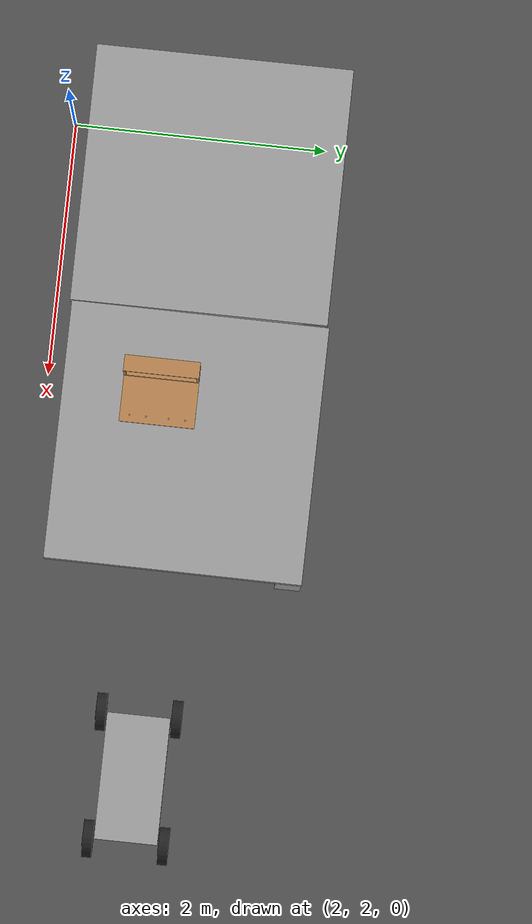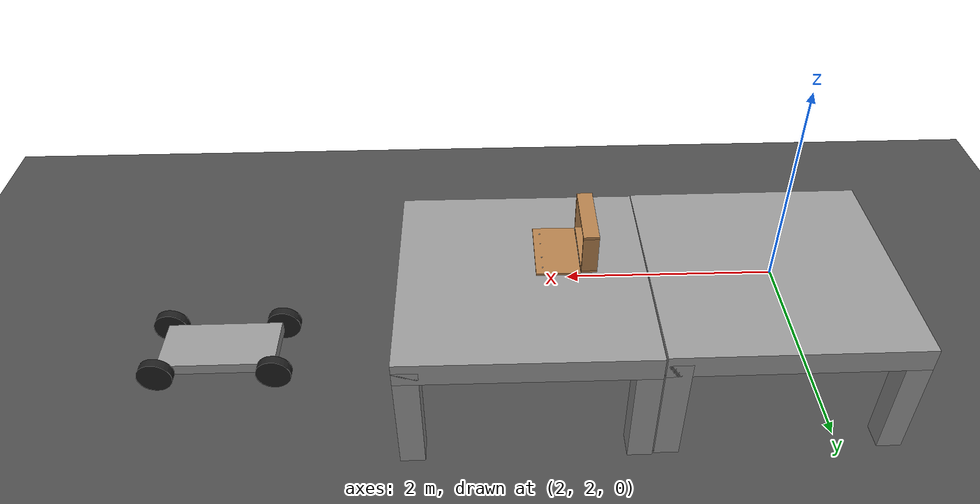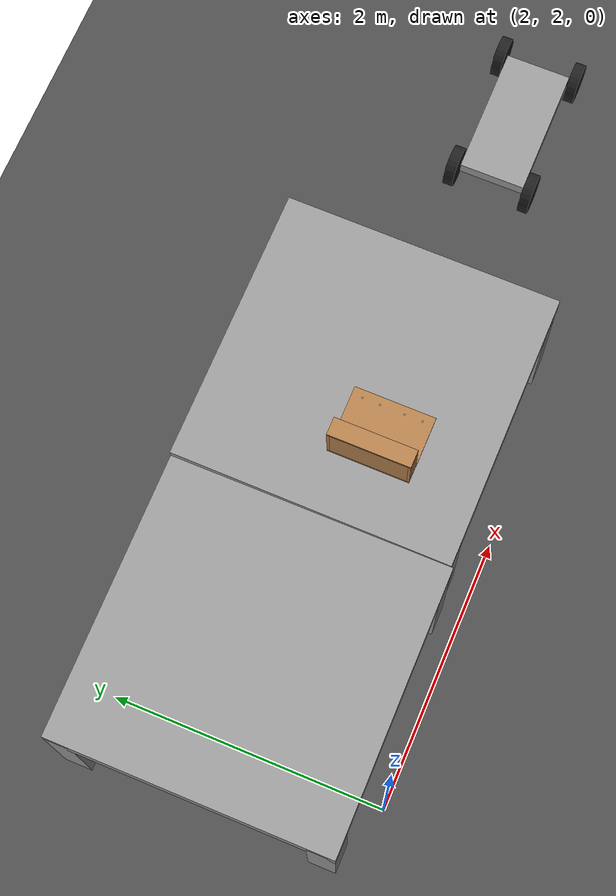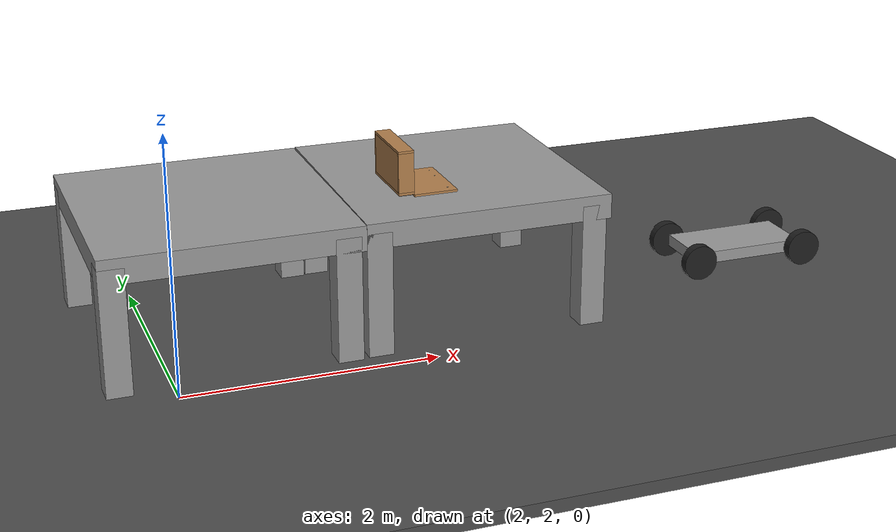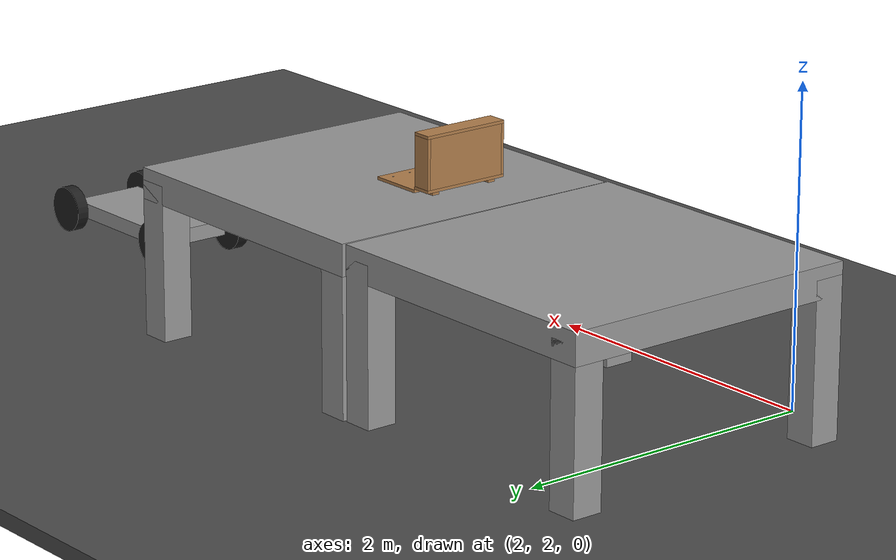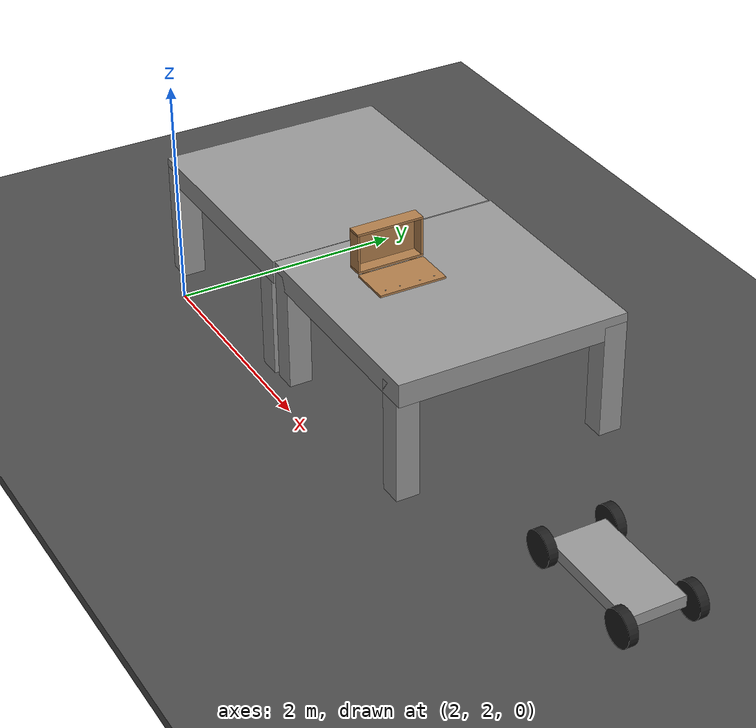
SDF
<sdf version="1.6">
 <world name="default">
  <model name="ground_plane">
   <static>1</static>
   <link name="link">
    <collision name="collision">
     <geometry><plane><normal>0 0 1</normal><size>100 100</size></plane></geometry>
     <surface>
      <contact><collide_bitmask>65535</collide_bitmask></contact>
      <friction><ode><mu>100</mu><mu2>50</mu2></ode></friction>
     </surface>
    </collision>
    <visual name="visual">
     <cast_shadows>0</cast_shadows>
     <geometry><plane><normal>0 0 1</normal><size>100 100</size></plane></geometry>
     <material>
      <script><uri>file://media/materials/scripts/gazebo.material</uri><name>Gazebo/Grey</name></script>
     </material>
    </visual>
   </link>
  </model>
  <model name="TableSmall_clone">
   <link name="link_0">
    <pose>0.868 -0.9 -0.096 0 -0 0</pose>
    <inertial>
     <mass>1</mass>
     <inertia>
      <ixx>0.166667</ixx>
      <ixy>0</ixy>
      <ixz>0</ixz>
      <iyy>0.166667</iyy>
      <iyz>0</iyz>
      <izz>0.166667</izz>
     </inertia>
    </inertial>
    <visual name="visual">
     <geometry><box><size>0.2 0.2 1</size></box></geometry>
     <material>
      <lighting>1</lighting>
      <script><uri>file://media/materials/scripts/gazebo.material</uri><name>Gazebo/Grey</name></script>
      <shader type="pixel"><normal_map>__default__</normal_map></shader>
      <ambient>0.3 0.3 0.3 1</ambient>
      <diffuse>0.7 0.7 0.7 1</diffuse>
      <specular>0.01 0.01 0.01 1</specular>
      <emissive>0 0 0 1</emissive>
     </material>
    </visual>
    <collision name="collision">
     <geometry><box><size>0.2 0.2 1</size></box></geometry>
     <surface>
      <friction>
       <ode><mu>1</mu><mu2>1</mu2><fdir1>0 0 0</fdir1><slip1>0</slip1><slip2>0</slip2></ode>
       <torsional>
        <coefficient>1</coefficient>
        <patch_radius>0</patch_radius>
        <surface_radius>0</surface_radius>
        <use_patch_radius>1</use_patch_radius>
        <ode><slip>0</slip></ode>
       </torsional>
      </friction>
      <bounce><restitution_coefficient>0</restitution_coefficient><threshold>1e+06</threshold></bounce>
      <contact>
       <collide_without_contact>0</collide_without_contact>
       <collide_without_contact_bitmask>1</collide_without_contact_bitmask>
       <collide_bitmask>1</collide_bitmask>
       <ode>
        <soft_cfm>0</soft_cfm>
        <soft_erp>0.2</soft_erp>
        <kp>1e+13</kp>
        <kd>1</kd>
        <max_vel>0.01</max_vel>
        <min_depth>0</min_depth>
       </ode>
       <bullet>
        <split_impulse>1</split_impulse>
        <split_impulse_penetration_threshold>-0.01</split_impulse_penetration_threshold>
        <soft_cfm>0</soft_cfm>
        <soft_erp>0.2</soft_erp>
        <kp>1e+13</kp>
        <kd>1</kd>
       </bullet>
      </contact>
     </surface>
    </collision>
   </link>
   <link name="link_0_clone">
    <pose>-0.892 -0.9 -0.096 0 -0 0</pose>
    <inertial>
     <mass>1</mass>
     <inertia>
      <ixx>0.166667</ixx>
      <ixy>0</ixy>
      <ixz>0</ixz>
      <iyy>0.166667</iyy>
      <iyz>0</iyz>
      <izz>0.166667</izz>
     </inertia>
    </inertial>
    <visual name="visual">
     <geometry><box><size>0.2 0.2 1</size></box></geometry>
     <material>
      <lighting>1</lighting>
      <script><uri>file://media/materials/scripts/gazebo.material</uri><name>Gazebo/Grey</name></script>
      <shader type="pixel"><normal_map>__default__</normal_map></shader>
      <ambient>0.3 0.3 0.3 1</ambient>
      <diffuse>0.7 0.7 0.7 1</diffuse>
      <specular>0.01 0.01 0.01 1</specular>
      <emissive>0 0 0 1</emissive>
     </material>
    </visual>
    <collision name="collision">
     <geometry><box><size>0.2 0.2 1</size></box></geometry>
     <surface>
      <friction>
       <ode><mu>1</mu><mu2>1</mu2><fdir1>0 0 0</fdir1><slip1>0</slip1><slip2>0</slip2></ode>
       <torsional>
        <coefficient>1</coefficient>
        <patch_radius>0</patch_radius>
        <surface_radius>0</surface_radius>
        <use_patch_radius>1</use_patch_radius>
        <ode><slip>0</slip></ode>
       </torsional>
      </friction>
      <bounce><restitution_coefficient>0</restitution_coefficient><threshold>1e+06</threshold></bounce>
      <contact>
       <collide_without_contact>0</collide_without_contact>
       <collide_without_contact_bitmask>1</collide_without_contact_bitmask>
       <collide_bitmask>1</collide_bitmask>
       <ode>
        <soft_cfm>0</soft_cfm>
        <soft_erp>0.2</soft_erp>
        <kp>1e+13</kp>
        <kd>1</kd>
        <max_vel>0.01</max_vel>
        <min_depth>0</min_depth>
       </ode>
       <bullet>
        <split_impulse>1</split_impulse>
        <split_impulse_penetration_threshold>-0.01</split_impulse_penetration_threshold>
        <soft_cfm>0</soft_cfm>
        <soft_erp>0.2</soft_erp>
        <kp>1e+13</kp>
        <kd>1</kd>
       </bullet>
      </contact>
     </surface>
    </collision>
   </link>
   <link name="link_0_clone_0">
    <pose>-0.892 0.9 -0.096 0 -0 0</pose>
    <inertial>
     <mass>1</mass>
     <inertia>
      <ixx>0.166667</ixx>
      <ixy>0</ixy>
      <ixz>0</ixz>
      <iyy>0.166667</iyy>
      <iyz>0</iyz>
      <izz>0.166667</izz>
     </inertia>
    </inertial>
    <visual name="visual">
     <geometry><box><size>0.2 0.2 1</size></box></geometry>
     <material>
      <lighting>1</lighting>
      <script><uri>file://media/materials/scripts/gazebo.material</uri><name>Gazebo/Grey</name></script>
      <shader type="pixel"><normal_map>__default__</normal_map></shader>
      <ambient>0.3 0.3 0.3 1</ambient>
      <diffuse>0.7 0.7 0.7 1</diffuse>
      <specular>0.01 0.01 0.01 1</specular>
      <emissive>0 0 0 1</emissive>
     </material>
    </visual>
    <collision name="collision">
     <geometry><box><size>0.2 0.2 1</size></box></geometry>
     <surface>
      <friction>
       <ode><mu>1</mu><mu2>1</mu2><fdir1>0 0 0</fdir1><slip1>0</slip1><slip2>0</slip2></ode>
       <torsional>
        <coefficient>1</coefficient>
        <patch_radius>0</patch_radius>
        <surface_radius>0</surface_radius>
        <use_patch_radius>1</use_patch_radius>
        <ode><slip>0</slip></ode>
       </torsional>
      </friction>
      <bounce><restitution_coefficient>0</restitution_coefficient><threshold>1e+06</threshold></bounce>
      <contact>
       <collide_without_contact>0</collide_without_contact>
       <collide_without_contact_bitmask>1</collide_without_contact_bitmask>
       <collide_bitmask>1</collide_bitmask>
       <ode>
        <soft_cfm>0</soft_cfm>
        <soft_erp>0.2</soft_erp>
        <kp>1e+13</kp>
        <kd>1</kd>
        <max_vel>0.01</max_vel>
        <min_depth>0</min_depth>
       </ode>
       <bullet>
        <split_impulse>1</split_impulse>
        <split_impulse_penetration_threshold>-0.01</split_impulse_penetration_threshold>
        <soft_cfm>0</soft_cfm>
        <soft_erp>0.2</soft_erp>
        <kp>1e+13</kp>
        <kd>1</kd>
       </bullet>
      </contact>
     </surface>
    </collision>
   </link>
   <link name="link_0_clone_1">
    <pose>0.908 0.9 -0.096 0 -0 0</pose>
    <inertial>
     <mass>1</mass>
     <inertia>
      <ixx>0.166667</ixx>
      <ixy>0</ixy>
      <ixz>0</ixz>
      <iyy>0.166667</iyy>
      <iyz>0</iyz>
      <izz>0.166667</izz>
     </inertia>
    </inertial>
    <visual name="visual">
     <geometry><box><size>0.2 0.2 1</size></box></geometry>
     <material>
      <lighting>1</lighting>
      <script><uri>file://media/materials/scripts/gazebo.material</uri><name>Gazebo/Grey</name></script>
      <shader type="pixel"><normal_map>__default__</normal_map></shader>
      <ambient>0.3 0.3 0.3 1</ambient>
      <diffuse>0.7 0.7 0.7 1</diffuse>
      <specular>0.01 0.01 0.01 1</specular>
      <emissive>0 0 0 1</emissive>
     </material>
    </visual>
    <collision name="collision">
     <geometry><box><size>0.2 0.2 1</size></box></geometry>
     <surface>
      <friction>
       <ode><mu>1</mu><mu2>1</mu2><fdir1>0 0 0</fdir1><slip1>0</slip1><slip2>0</slip2></ode>
       <torsional>
        <coefficient>1</coefficient>
        <patch_radius>0</patch_radius>
        <surface_radius>0</surface_radius>
        <use_patch_radius>1</use_patch_radius>
        <ode><slip>0</slip></ode>
       </torsional>
      </friction>
      <bounce><restitution_coefficient>0</restitution_coefficient><threshold>1e+06</threshold></bounce>
      <contact>
       <collide_without_contact>0</collide_without_contact>
       <collide_without_contact_bitmask>1</collide_without_contact_bitmask>
       <collide_bitmask>1</collide_bitmask>
       <ode>
        <soft_cfm>0</soft_cfm>
        <soft_erp>0.2</soft_erp>
        <kp>1e+13</kp>
        <kd>1</kd>
        <max_vel>0.01</max_vel>
        <min_depth>0</min_depth>
       </ode>
       <bullet>
        <split_impulse>1</split_impulse>
        <split_impulse_penetration_threshold>-0.01</split_impulse_penetration_threshold>
        <soft_cfm>0</soft_cfm>
        <soft_erp>0.2</soft_erp>
        <kp>1e+13</kp>
        <kd>1</kd>
       </bullet>
      </contact>
     </surface>
    </collision>
   </link>
   <link name="link_1">
    <pose>0.008 0 0.384 0 -0 0</pose>
    <inertial>
     <mass>1</mass>
     <inertia>
      <ixx>0.166667</ixx>
      <ixy>0</ixy>
      <ixz>0</ixz>
      <iyy>0.166667</iyy>
      <iyz>0</iyz>
      <izz>0.166667</izz>
     </inertia>
    </inertial>
    <visual name="visual">
     <geometry><box><size>2 2 0.2</size></box></geometry>
     <material>
      <lighting>1</lighting>
      <script><uri>file://media/materials/scripts/gazebo.material</uri><name>Gazebo/Grey</name></script>
      <shader type="pixel"><normal_map>__default__</normal_map></shader>
      <ambient>0.3 0.3 0.3 1</ambient>
      <diffuse>0.7 0.7 0.7 1</diffuse>
      <specular>0.01 0.01 0.01 1</specular>
      <emissive>0 0 0 1</emissive>
     </material>
    </visual>
    <collision name="collision">
     <geometry><box><size>2 2 0.2</size></box></geometry>
     <surface>
      <friction>
       <ode><mu>1</mu><mu2>1</mu2><fdir1>0 0 0</fdir1><slip1>0</slip1><slip2>0</slip2></ode>
       <torsional>
        <coefficient>1</coefficient>
        <patch_radius>0</patch_radius>
        <surface_radius>0</surface_radius>
        <use_patch_radius>1</use_patch_radius>
        <ode><slip>0</slip></ode>
       </torsional>
      </friction>
      <bounce><restitution_coefficient>0</restitution_coefficient><threshold>1e+06</threshold></bounce>
      <contact>
       <collide_without_contact>0</collide_without_contact>
       <collide_without_contact_bitmask>1</collide_without_contact_bitmask>
       <collide_bitmask>1</collide_bitmask>
       <ode>
        <soft_cfm>0</soft_cfm>
        <soft_erp>0.2</soft_erp>
        <kp>1e+13</kp>
        <kd>1</kd>
        <max_vel>0.01</max_vel>
        <min_depth>0</min_depth>
       </ode>
       <bullet>
        <split_impulse>1</split_impulse>
        <split_impulse_penetration_threshold>-0.01</split_impulse_penetration_threshold>
        <soft_cfm>0</soft_cfm>
        <soft_erp>0.2</soft_erp>
        <kp>1e+13</kp>
        <kd>1</kd>
       </bullet>
      </contact>
     </surface>
    </collision>
   </link>
   <joint name="link_1_JOINT_0" type="fixed">
    <parent>link_1</parent>
    <child>link_0_clone_1</child>
    <physics>
     <ode><limit><cfm>0</cfm><erp>0.2</erp></limit><suspension><cfm>0</cfm><erp>0.2</erp></suspension></ode>
    </physics>
   </joint>
   <joint name="link_1_JOINT_1" type="fixed">
    <parent>link_1</parent>
    <child>link_0_clone_0</child>
    <physics>
     <ode><limit><cfm>0</cfm><erp>0.2</erp></limit><suspension><cfm>0</cfm><erp>0.2</erp></suspension></ode>
    </physics>
   </joint>
   <joint name="link_1_JOINT_2" type="revolute">
    <parent>link_1</parent>
    <child>link_0</child>
    <axis>
     <xyz>1 0 0</xyz>
     <use_parent_model_frame>0</use_parent_model_frame>
     <limit>
      <lower>-1.79769e+308</lower>
      <upper>1.79769e+308</upper>
      <effort>-1</effort>
      <velocity>-1</velocity>
     </limit>
     <dynamics>
      <spring_reference>0</spring_reference>
      <spring_stiffness>0</spring_stiffness>
      <damping>0</damping>
     </dynamics>
    </axis>
    <physics>
     <ode><limit><cfm>0</cfm><erp>0.2</erp></limit><suspension><cfm>0</cfm><erp>0.2</erp></suspension></ode>
    </physics>
   </joint>
   <joint name="link_1_JOINT_3" type="revolute">
    <parent>link_1</parent>
    <child>link_0_clone</child>
    <axis>
     <xyz>1 0 0</xyz>
     <use_parent_model_frame>0</use_parent_model_frame>
     <limit>
      <lower>-1.79769e+308</lower>
      <upper>1.79769e+308</upper>
      <effort>-1</effort>
      <velocity>-1</velocity>
     </limit>
     <dynamics>
      <spring_reference>0</spring_reference>
      <spring_stiffness>0</spring_stiffness>
      <damping>0</damping>
     </dynamics>
    </axis>
    <physics>
     <ode><limit><cfm>0</cfm><erp>0.2</erp></limit><suspension><cfm>0</cfm><erp>0.2</erp></suspension></ode>
    </physics>
   </joint>
   <static>0</static>
   <pose>4.49155 3.16061 0.598001 4e-06 4e-06 -0.001695</pose>
  </model>
  <model name="TableSmall_clone_clone">
   <link name="link_0">
    <pose>0.868 -0.9 -0.096 0 -0 0</pose>
    <inertial>
     <mass>1</mass>
     <inertia>
      <ixx>0.166667</ixx>
      <ixy>0</ixy>
      <ixz>0</ixz>
      <iyy>0.166667</iyy>
      <iyz>0</iyz>
      <izz>0.166667</izz>
     </inertia>
    </inertial>
    <visual name="visual">
     <geometry><box><size>0.2 0.2 1</size></box></geometry>
     <material>
      <lighting>1</lighting>
      <script><uri>file://media/materials/scripts/gazebo.material</uri><name>Gazebo/Grey</name></script>
      <shader type="pixel"><normal_map>__default__</normal_map></shader>
      <ambient>0.3 0.3 0.3 1</ambient>
      <diffuse>0.7 0.7 0.7 1</diffuse>
      <specular>0.01 0.01 0.01 1</specular>
      <emissive>0 0 0 1</emissive>
     </material>
    </visual>
    <collision name="collision">
     <geometry><box><size>0.2 0.2 1</size></box></geometry>
     <surface>
      <friction>
       <ode><mu>1</mu><mu2>1</mu2><fdir1>0 0 0</fdir1><slip1>0</slip1><slip2>0</slip2></ode>
       <torsional>
        <coefficient>1</coefficient>
        <patch_radius>0</patch_radius>
        <surface_radius>0</surface_radius>
        <use_patch_radius>1</use_patch_radius>
        <ode><slip>0</slip></ode>
       </torsional>
      </friction>
      <bounce><restitution_coefficient>0</restitution_coefficient><threshold>1e+06</threshold></bounce>
      <contact>
       <collide_without_contact>0</collide_without_contact>
       <collide_without_contact_bitmask>1</collide_without_contact_bitmask>
       <collide_bitmask>1</collide_bitmask>
       <ode>
        <soft_cfm>0</soft_cfm>
        <soft_erp>0.2</soft_erp>
        <kp>1e+13</kp>
        <kd>1</kd>
        <max_vel>0.01</max_vel>
        <min_depth>0</min_depth>
       </ode>
       <bullet>
        <split_impulse>1</split_impulse>
        <split_impulse_penetration_threshold>-0.01</split_impulse_penetration_threshold>
        <soft_cfm>0</soft_cfm>
        <soft_erp>0.2</soft_erp>
        <kp>1e+13</kp>
        <kd>1</kd>
       </bullet>
      </contact>
     </surface>
    </collision>
   </link>
   <link name="link_0_clone">
    <pose>-0.892 -0.9 -0.096 0 -0 0</pose>
    <inertial>
     <mass>1</mass>
     <inertia>
      <ixx>0.166667</ixx>
      <ixy>0</ixy>
      <ixz>0</ixz>
      <iyy>0.166667</iyy>
      <iyz>0</iyz>
      <izz>0.166667</izz>
     </inertia>
    </inertial>
    <visual name="visual">
     <geometry><box><size>0.2 0.2 1</size></box></geometry>
     <material>
      <lighting>1</lighting>
      <script><uri>file://media/materials/scripts/gazebo.material</uri><name>Gazebo/Grey</name></script>
      <shader type="pixel"><normal_map>__default__</normal_map></shader>
      <ambient>0.3 0.3 0.3 1</ambient>
      <diffuse>0.7 0.7 0.7 1</diffuse>
      <specular>0.01 0.01 0.01 1</specular>
      <emissive>0 0 0 1</emissive>
     </material>
    </visual>
    <collision name="collision">
     <geometry><box><size>0.2 0.2 1</size></box></geometry>
     <surface>
      <friction>
       <ode><mu>1</mu><mu2>1</mu2><fdir1>0 0 0</fdir1><slip1>0</slip1><slip2>0</slip2></ode>
       <torsional>
        <coefficient>1</coefficient>
        <patch_radius>0</patch_radius>
        <surface_radius>0</surface_radius>
        <use_patch_radius>1</use_patch_radius>
        <ode><slip>0</slip></ode>
       </torsional>
      </friction>
      <bounce><restitution_coefficient>0</restitution_coefficient><threshold>1e+06</threshold></bounce>
      <contact>
       <collide_without_contact>0</collide_without_contact>
       <collide_without_contact_bitmask>1</collide_without_contact_bitmask>
       <collide_bitmask>1</collide_bitmask>
       <ode>
        <soft_cfm>0</soft_cfm>
        <soft_erp>0.2</soft_erp>
        <kp>1e+13</kp>
        <kd>1</kd>
        <max_vel>0.01</max_vel>
        <min_depth>0</min_depth>
       </ode>
       <bullet>
        <split_impulse>1</split_impulse>
        <split_impulse_penetration_threshold>-0.01</split_impulse_penetration_threshold>
        <soft_cfm>0</soft_cfm>
        <soft_erp>0.2</soft_erp>
        <kp>1e+13</kp>
        <kd>1</kd>
       </bullet>
      </contact>
     </surface>
    </collision>
   </link>
   <link name="link_0_clone_0">
    <pose>-0.892 0.9 -0.096 0 -0 0</pose>
    <inertial>
     <mass>1</mass>
     <inertia>
      <ixx>0.166667</ixx>
      <ixy>0</ixy>
      <ixz>0</ixz>
      <iyy>0.166667</iyy>
      <iyz>0</iyz>
      <izz>0.166667</izz>
     </inertia>
    </inertial>
    <visual name="visual">
     <geometry><box><size>0.2 0.2 1</size></box></geometry>
     <material>
      <lighting>1</lighting>
      <script><uri>file://media/materials/scripts/gazebo.material</uri><name>Gazebo/Grey</name></script>
      <shader type="pixel"><normal_map>__default__</normal_map></shader>
      <ambient>0.3 0.3 0.3 1</ambient>
      <diffuse>0.7 0.7 0.7 1</diffuse>
      <specular>0.01 0.01 0.01 1</specular>
      <emissive>0 0 0 1</emissive>
     </material>
    </visual>
    <collision name="collision">
     <geometry><box><size>0.2 0.2 1</size></box></geometry>
     <surface>
      <friction>
       <ode><mu>1</mu><mu2>1</mu2><fdir1>0 0 0</fdir1><slip1>0</slip1><slip2>0</slip2></ode>
       <torsional>
        <coefficient>1</coefficient>
        <patch_radius>0</patch_radius>
        <surface_radius>0</surface_radius>
        <use_patch_radius>1</use_patch_radius>
        <ode><slip>0</slip></ode>
       </torsional>
      </friction>
      <bounce><restitution_coefficient>0</restitution_coefficient><threshold>1e+06</threshold></bounce>
      <contact>
       <collide_without_contact>0</collide_without_contact>
       <collide_without_contact_bitmask>1</collide_without_contact_bitmask>
       <collide_bitmask>1</collide_bitmask>
       <ode>
        <soft_cfm>0</soft_cfm>
        <soft_erp>0.2</soft_erp>
        <kp>1e+13</kp>
        <kd>1</kd>
        <max_vel>0.01</max_vel>
        <min_depth>0</min_depth>
       </ode>
       <bullet>
        <split_impulse>1</split_impulse>
        <split_impulse_penetration_threshold>-0.01</split_impulse_penetration_threshold>
        <soft_cfm>0</soft_cfm>
        <soft_erp>0.2</soft_erp>
        <kp>1e+13</kp>
        <kd>1</kd>
       </bullet>
      </contact>
     </surface>
    </collision>
   </link>
   <link name="link_0_clone_1">
    <pose>0.908 0.9 -0.096 0 -0 0</pose>
    <inertial>
     <mass>1</mass>
     <inertia>
      <ixx>0.166667</ixx>
      <ixy>0</ixy>
      <ixz>0</ixz>
      <iyy>0.166667</iyy>
      <iyz>0</iyz>
      <izz>0.166667</izz>
     </inertia>
    </inertial>
    <visual name="visual">
     <geometry><box><size>0.2 0.2 1</size></box></geometry>
     <material>
      <lighting>1</lighting>
      <script><uri>file://media/materials/scripts/gazebo.material</uri><name>Gazebo/Grey</name></script>
      <shader type="pixel"><normal_map>__default__</normal_map></shader>
      <ambient>0.3 0.3 0.3 1</ambient>
      <diffuse>0.7 0.7 0.7 1</diffuse>
      <specular>0.01 0.01 0.01 1</specular>
      <emissive>0 0 0 1</emissive>
     </material>
    </visual>
    <collision name="collision">
     <geometry><box><size>0.2 0.2 1</size></box></geometry>
     <surface>
      <friction>
       <ode><mu>1</mu><mu2>1</mu2><fdir1>0 0 0</fdir1><slip1>0</slip1><slip2>0</slip2></ode>
       <torsional>
        <coefficient>1</coefficient>
        <patch_radius>0</patch_radius>
        <surface_radius>0</surface_radius>
        <use_patch_radius>1</use_patch_radius>
        <ode><slip>0</slip></ode>
       </torsional>
      </friction>
      <bounce><restitution_coefficient>0</restitution_coefficient><threshold>1e+06</threshold></bounce>
      <contact>
       <collide_without_contact>0</collide_without_contact>
       <collide_without_contact_bitmask>1</collide_without_contact_bitmask>
       <collide_bitmask>1</collide_bitmask>
       <ode>
        <soft_cfm>0</soft_cfm>
        <soft_erp>0.2</soft_erp>
        <kp>1e+13</kp>
        <kd>1</kd>
        <max_vel>0.01</max_vel>
        <min_depth>0</min_depth>
       </ode>
       <bullet>
        <split_impulse>1</split_impulse>
        <split_impulse_penetration_threshold>-0.01</split_impulse_penetration_threshold>
        <soft_cfm>0</soft_cfm>
        <soft_erp>0.2</soft_erp>
        <kp>1e+13</kp>
        <kd>1</kd>
       </bullet>
      </contact>
     </surface>
    </collision>
   </link>
   <link name="link_1">
    <pose>0.008 0 0.384 0 -0 0</pose>
    <inertial>
     <mass>1</mass>
     <inertia>
      <ixx>0.166667</ixx>
      <ixy>0</ixy>
      <ixz>0</ixz>
      <iyy>0.166667</iyy>
      <iyz>0</iyz>
      <izz>0.166667</izz>
     </inertia>
    </inertial>
    <visual name="visual">
     <geometry><box><size>2 2 0.2</size></box></geometry>
     <material>
      <lighting>1</lighting>
      <script><uri>file://media/materials/scripts/gazebo.material</uri><name>Gazebo/Grey</name></script>
      <shader type="pixel"><normal_map>__default__</normal_map></shader>
      <ambient>0.3 0.3 0.3 1</ambient>
      <diffuse>0.7 0.7 0.7 1</diffuse>
      <specular>0.01 0.01 0.01 1</specular>
      <emissive>0 0 0 1</emissive>
     </material>
    </visual>
    <collision name="collision">
     <geometry><box><size>2 2 0.2</size></box></geometry>
     <surface>
      <friction>
       <ode><mu>1</mu><mu2>1</mu2><fdir1>0 0 0</fdir1><slip1>0</slip1><slip2>0</slip2></ode>
       <torsional>
        <coefficient>1</coefficient>
        <patch_radius>0</patch_radius>
        <surface_radius>0</surface_radius>
        <use_patch_radius>1</use_patch_radius>
        <ode><slip>0</slip></ode>
       </torsional>
      </friction>
      <bounce><restitution_coefficient>0</restitution_coefficient><threshold>1e+06</threshold></bounce>
      <contact>
       <collide_without_contact>0</collide_without_contact>
       <collide_without_contact_bitmask>1</collide_without_contact_bitmask>
       <collide_bitmask>1</collide_bitmask>
       <ode>
        <soft_cfm>0</soft_cfm>
        <soft_erp>0.2</soft_erp>
        <kp>1e+13</kp>
        <kd>1</kd>
        <max_vel>0.01</max_vel>
        <min_depth>0</min_depth>
       </ode>
       <bullet>
        <split_impulse>1</split_impulse>
        <split_impulse_penetration_threshold>-0.01</split_impulse_penetration_threshold>
        <soft_cfm>0</soft_cfm>
        <soft_erp>0.2</soft_erp>
        <kp>1e+13</kp>
        <kd>1</kd>
       </bullet>
      </contact>
     </surface>
    </collision>
   </link>
   <joint name="link_1_JOINT_0" type="fixed">
    <parent>link_1</parent>
    <child>link_0_clone_1</child>
    <physics>
     <ode><limit><cfm>0</cfm><erp>0.2</erp></limit><suspension><cfm>0</cfm><erp>0.2</erp></suspension></ode>
    </physics>
   </joint>
   <joint name="link_1_JOINT_1" type="fixed">
    <parent>link_1</parent>
    <child>link_0_clone_0</child>
    <physics>
     <ode><limit><cfm>0</cfm><erp>0.2</erp></limit><suspension><cfm>0</cfm><erp>0.2</erp></suspension></ode>
    </physics>
   </joint>
   <joint name="link_1_JOINT_2" type="revolute">
    <parent>link_1</parent>
    <child>link_0</child>
    <axis>
     <xyz>1 0 0</xyz>
     <use_parent_model_frame>0</use_parent_model_frame>
     <limit>
      <lower>-1.79769e+308</lower>
      <upper>1.79769e+308</upper>
      <effort>-1</effort>
      <velocity>-1</velocity>
     </limit>
     <dynamics>
      <spring_reference>0</spring_reference>
      <spring_stiffness>0</spring_stiffness>
      <damping>0</damping>
     </dynamics>
    </axis>
    <physics>
     <ode><limit><cfm>0</cfm><erp>0.2</erp></limit><suspension><cfm>0</cfm><erp>0.2</erp></suspension></ode>
    </physics>
   </joint>
   <joint name="link_1_JOINT_3" type="revolute">
    <parent>link_1</parent>
    <child>link_0_clone</child>
    <axis>
     <xyz>1 0 0</xyz>
     <use_parent_model_frame>0</use_parent_model_frame>
     <limit>
      <lower>-1.79769e+308</lower>
      <upper>1.79769e+308</upper>
      <effort>-1</effort>
      <velocity>-1</velocity>
     </limit>
     <dynamics>
      <spring_reference>0</spring_reference>
      <spring_stiffness>0</spring_stiffness>
      <damping>0</damping>
     </dynamics>
    </axis>
    <physics>
     <ode><limit><cfm>0</cfm><erp>0.2</erp></limit><suspension><cfm>0</cfm><erp>0.2</erp></suspension></ode>
    </physics>
   </joint>
   <static>0</static>
   <pose>2.48127 3.14333 0.597995 -0 2e-06 0.003664</pose>
  </model>
  <model name="cart_rigid_suspension">
   <link name="chassis">
    <pose>0 0 0.15 0 -0 0</pose>
    <inertial>
     <pose>0.1 0 0 0 -0 0</pose>
     <mass>10</mass>
     <inertia>
      <ixx>0.216667</ixx>
      <iyy>0.841667</iyy>
      <izz>1.04167</izz>
      <ixy>0</ixy>
      <ixz>0</ixz>
      <iyz>0</iyz>
     </inertia>
    </inertial>
    <collision name="collision"><geometry><box><size>1 0.5 0.1</size></box></geometry></collision>
    <visual name="visual">
     <geometry><box><size>1 0.5 0.1</size></box></geometry>
     <material>
      <script><uri>file://media/materials/scripts/gazebo.material</uri><name>Gazebo/Grey</name></script>
     </material>
    </visual>
   </link>
   <link name="wheel_front_left">
    <pose>0.5 0.298 0.15 -1.5708 0 0</pose>
    <inertial>
     <mass>0.5</mass>
     <inertia>
      <ixx>0.00307917</ixx>
      <iyy>0.00307917</iyy>
      <izz>0.005625</izz>
      <ixy>0</ixy>
      <ixz>0</ixz>
      <iyz>0</iyz>
     </inertia>
    </inertial>
    <collision name="collision">
     <geometry><cylinder><radius>0.15</radius><length>0.08</length></cylinder></geometry>
    </collision>
    <visual name="visual">
     <geometry><cylinder><radius>0.15</radius><length>0.08</length></cylinder></geometry>
     <material>
      <script><uri>file://media/materials/scripts/gazebo.material</uri><name>Gazebo/Black</name></script>
     </material>
    </visual>
   </link>
   <joint name="wheel_front_left_spin" type="revolute">
    <parent>chassis</parent>
    <child>wheel_front_left</child>
    <axis>
     <xyz>0 0 1</xyz>
     <use_parent_model_frame>0</use_parent_model_frame>
     <limit><lower>-1e+16</lower><upper>1e+16</upper></limit>
     <dynamics><spring_reference>0</spring_reference><spring_stiffness>0</spring_stiffness></dynamics>
    </axis>
   </joint>
   <link name="wheel_front_right">
    <pose>0.5 -0.298 0.15 -1.5708 0 0</pose>
    <inertial>
     <mass>0.5</mass>
     <inertia>
      <ixx>0.00307917</ixx>
      <iyy>0.00307917</iyy>
      <izz>0.005625</izz>
      <ixy>0</ixy>
      <ixz>0</ixz>
      <iyz>0</iyz>
     </inertia>
    </inertial>
    <collision name="collision">
     <geometry><cylinder><radius>0.15</radius><length>0.08</length></cylinder></geometry>
    </collision>
    <visual name="visual">
     <geometry><cylinder><radius>0.15</radius><length>0.08</length></cylinder></geometry>
     <material>
      <script><uri>file://media/materials/scripts/gazebo.material</uri><name>Gazebo/Black</name></script>
     </material>
    </visual>
   </link>
   <joint name="wheel_front_right_spin" type="revolute">
    <parent>chassis</parent>
    <child>wheel_front_right</child>
    <axis>
     <xyz>0 0 1</xyz>
     <use_parent_model_frame>0</use_parent_model_frame>
     <limit><lower>-1e+16</lower><upper>1e+16</upper></limit>
     <dynamics><spring_reference>0</spring_reference><spring_stiffness>0</spring_stiffness></dynamics>
    </axis>
   </joint>
   <link name="wheel_rear_left">
    <pose>-0.5 0.298 0.15 -1.5708 0 0</pose>
    <inertial>
     <mass>0.5</mass>
     <inertia>
      <ixx>0.00307917</ixx>
      <iyy>0.00307917</iyy>
      <izz>0.005625</izz>
      <ixy>0</ixy>
      <ixz>0</ixz>
      <iyz>0</iyz>
     </inertia>
    </inertial>
    <collision name="collision">
     <geometry><cylinder><radius>0.15</radius><length>0.08</length></cylinder></geometry>
    </collision>
    <visual name="visual">
     <geometry><cylinder><radius>0.15</radius><length>0.08</length></cylinder></geometry>
     <material>
      <script><uri>file://media/materials/scripts/gazebo.material</uri><name>Gazebo/Black</name></script>
     </material>
    </visual>
   </link>
   <joint name="wheel_rear_left_spin" type="revolute">
    <parent>chassis</parent>
    <child>wheel_rear_left</child>
    <axis>
     <xyz>0 0 1</xyz>
     <use_parent_model_frame>0</use_parent_model_frame>
     <limit><lower>-1e+16</lower><upper>1e+16</upper></limit>
     <dynamics><spring_reference>0</spring_reference><spring_stiffness>0</spring_stiffness></dynamics>
    </axis>
   </joint>
   <link name="wheel_rear_right">
    <pose>-0.5 -0.298 0.15 -1.5708 0 0</pose>
    <inertial>
     <mass>0.5</mass>
     <inertia>
      <ixx>0.00307917</ixx>
      <iyy>0.00307917</iyy>
      <izz>0.005625</izz>
      <ixy>0</ixy>
      <ixz>0</ixz>
      <iyz>0</iyz>
     </inertia>
    </inertial>
    <collision name="collision">
     <geometry><cylinder><radius>0.15</radius><length>0.08</length></cylinder></geometry>
    </collision>
    <visual name="visual">
     <geometry><cylinder><radius>0.15</radius><length>0.08</length></cylinder></geometry>
     <material>
      <script><uri>file://media/materials/scripts/gazebo.material</uri><name>Gazebo/Black</name></script>
     </material>
    </visual>
   </link>
   <joint name="wheel_rear_right_spin" type="revolute">
    <parent>chassis</parent>
    <child>wheel_rear_right</child>
    <axis>
     <xyz>0 0 1</xyz>
     <use_parent_model_frame>0</use_parent_model_frame>
     <limit><lower>-1e+16</lower><upper>1e+16</upper></limit>
     <dynamics><spring_reference>0</spring_reference><spring_stiffness>0</spring_stiffness></dynamics>
    </axis>
   </joint>
   <pose>7.1122 3.00948 0.001994 -2e-06 0 0.002874</pose>
  </model>
  <model name="asphalt_plane">
   <static>1</static>
   <link name="link">
    <collision name="collision"><geometry><box><size>31.6298 29.1828 0.1</size></box></geometry></collision>
    <visual name="visual">
     <cast_shadows>0</cast_shadows>
     <geometry><box><size>31.6298 29.1828 0.1</size></box></geometry>
     <material>
      <script>
       <uri>model://asphalt_plane/materials/scripts</uri>
       <uri>model://asphalt_plane/materials/textures</uri>
       <name>vrc/asphalt</name>
      </script>
     </material>
    </visual>
   </link>
   <pose>-1.96873 2.62614 -0.048007 0 -0 0</pose>
  </model>
  <model name="wooden_case">
   <link name="base">
    <pose>0 0 0.024 0 -0 0</pose>
    <inertial>
     <pose>-0.022184 0 0.171592 0 -0 0</pose>
     <mass>3.96264</mass>
     <inertia>
      <ixx>0.213536</ixx>
      <ixy>0</ixy>
      <ixz>0.000779377</ixz>
      <iyy>0.0708943</iyy>
      <iyz>0</iyz>
      <izz>0.154604</izz>
     </inertia>
    </inertial>
    <collision name="collision_back">
     <pose>-0.053975 0 0.1778 0 -0 0</pose>
     <geometry><box><size>0.01905 0.5461 0.3175</size></box></geometry>
     <surface>
      <contact>
       <poissons_ratio>0.347</poissons_ratio>
       <elastic_modulus>8.8e+09</elastic_modulus>
       <ode><kp>100000</kp><kd>100</kd><max_vel>100</max_vel><min_depth>0.001</min_depth></ode>
      </contact>
      <friction>
       <torsional>
        <coefficient>1</coefficient>
        <use_patch_radius>0</use_patch_radius>
        <surface_radius>0.01</surface_radius>
       </torsional>
      </friction>
     </surface>
    </collision>
    <visual name="visual_back">
     <pose>-0.053975 0 0.1778 0 -0 0</pose>
     <geometry><box><size>0.01905 0.5461 0.3175</size></box></geometry>
     <material>
      <script><uri>file://media/materials/scripts/gazebo.material</uri><name>Gazebo/Wood</name></script>
     </material>
    </visual>
    <collision name="collision_bottom">
     <pose>0 0 0.009525 0 -0 0</pose>
     <geometry><box><size>0.127 0.5842 0.01905</size></box></geometry>
     <surface>
      <contact>
       <poissons_ratio>0.347</poissons_ratio>
       <elastic_modulus>8.8e+09</elastic_modulus>
       <ode><kp>100000</kp><kd>100</kd><max_vel>100</max_vel><min_depth>0.001</min_depth></ode>
      </contact>
      <friction>
       <torsional>
        <coefficient>1</coefficient>
        <use_patch_radius>0</use_patch_radius>
        <surface_radius>0.01</surface_radius>
       </torsional>
      </friction>
     </surface>
    </collision>
    <visual name="visual_bottom">
     <pose>0 0 0.009525 0 -0 0</pose>
     <geometry><box><size>0.127 0.5842 0.01905</size></box></geometry>
     <material>
      <script><uri>file://media/materials/scripts/gazebo.material</uri><name>Gazebo/Wood</name></script>
     </material>
    </visual>
    <collision name="collision_top">
     <pose>0 0 0.346075 0 -0 0</pose>
     <geometry><box><size>0.127 0.5842 0.01905</size></box></geometry>
     <surface>
      <contact>
       <poissons_ratio>0.347</poissons_ratio>
       <elastic_modulus>8.8e+09</elastic_modulus>
       <ode><kp>100000</kp><kd>100</kd><max_vel>100</max_vel><min_depth>0.001</min_depth></ode>
      </contact>
      <friction>
       <torsional>
        <coefficient>1</coefficient>
        <use_patch_radius>0</use_patch_radius>
        <surface_radius>0.01</surface_radius>
       </torsional>
      </friction>
     </surface>
    </collision>
    <visual name="visual_top">
     <pose>0 0 0.346075 0 -0 0</pose>
     <geometry><box><size>0.127 0.5842 0.01905</size></box></geometry>
     <material>
      <script><uri>file://media/materials/scripts/gazebo.material</uri><name>Gazebo/Wood</name></script>
     </material>
    </visual>
    <collision name="collision_left">
     <pose>0 -0.282575 0.1778 0 -0 0</pose>
     <geometry><box><size>0.127 0.01905 0.3175</size></box></geometry>
     <surface>
      <contact>
       <poissons_ratio>0.347</poissons_ratio>
       <elastic_modulus>8.8e+09</elastic_modulus>
       <ode><kp>100000</kp><kd>100</kd><max_vel>100</max_vel><min_depth>0.001</min_depth></ode>
      </contact>
      <friction>
       <torsional>
        <coefficient>1</coefficient>
        <use_patch_radius>0</use_patch_radius>
        <surface_radius>0.01</surface_radius>
       </torsional>
      </friction>
     </surface>
    </collision>
    <visual name="visual_left">
     <pose>0 -0.282575 0.1778 0 -0 0</pose>
     <geometry><box><size>0.127 0.01905 0.3175</size></box></geometry>
     <material>
      <script><uri>file://media/materials/scripts/gazebo.material</uri><name>Gazebo/Wood</name></script>
     </material>
    </visual>
    <collision name="collision_right">
     <pose>0 0.282575 0.1778 0 -0 0</pose>
     <geometry><box><size>0.127 0.01905 0.3175</size></box></geometry>
     <surface>
      <contact>
       <poissons_ratio>0.347</poissons_ratio>
       <elastic_modulus>8.8e+09</elastic_modulus>
       <ode><kp>100000</kp><kd>100</kd><max_vel>100</max_vel><min_depth>0.001</min_depth></ode>
      </contact>
      <friction>
       <torsional>
        <coefficient>1</coefficient>
        <use_patch_radius>0</use_patch_radius>
        <surface_radius>0.01</surface_radius>
       </torsional>
      </friction>
     </surface>
    </collision>
    <visual name="visual_right">
     <pose>0 0.282575 0.1778 0 -0 0</pose>
     <geometry><box><size>0.127 0.01905 0.3175</size></box></geometry>
     <material>
      <script><uri>file://media/materials/scripts/gazebo.material</uri><name>Gazebo/Wood</name></script>
     </material>
    </visual>
    <collision name="collision_block_left">
     <pose>0.0095 -0.2151 -0.012 0 -0 0</pose>
     <geometry><box><size>0.108 0.05 0.024</size></box></geometry>
     <surface>
      <contact>
       <poissons_ratio>0.347</poissons_ratio>
       <elastic_modulus>8.8e+09</elastic_modulus>
       <ode><kp>100000</kp><kd>100</kd><max_vel>100</max_vel><min_depth>0.001</min_depth></ode>
      </contact>
      <friction>
       <torsional>
        <coefficient>1</coefficient>
        <use_patch_radius>0</use_patch_radius>
        <surface_radius>0.01</surface_radius>
       </torsional>
      </friction>
     </surface>
    </collision>
    <visual name="visual_block_left">
     <pose>0.0095 -0.2151 -0.012 0 -0 0</pose>
     <geometry><box><size>0.108 0.05 0.024</size></box></geometry>
     <material>
      <script><uri>file://media/materials/scripts/gazebo.material</uri><name>Gazebo/Wood</name></script>
     </material>
    </visual>
    <collision name="collision_block_right">
     <pose>0.0095 0.2151 -0.012 0 -0 0</pose>
     <geometry><box><size>0.108 0.05 0.024</size></box></geometry>
     <surface>
      <contact>
       <poissons_ratio>0.347</poissons_ratio>
       <elastic_modulus>8.8e+09</elastic_modulus>
       <ode><kp>100000</kp><kd>100</kd><max_vel>100</max_vel><min_depth>0.001</min_depth></ode>
      </contact>
      <friction>
       <torsional>
        <coefficient>1</coefficient>
        <use_patch_radius>0</use_patch_radius>
        <surface_radius>0.01</surface_radius>
       </torsional>
      </friction>
     </surface>
    </collision>
    <visual name="visual_block_right">
     <pose>0.0095 0.2151 -0.012 0 -0 0</pose>
     <geometry><box><size>0.108 0.05 0.024</size></box></geometry>
     <material>
      <script><uri>file://media/materials/scripts/gazebo.material</uri><name>Gazebo/Wood</name></script>
     </material>
    </visual>
   </link>
   <link name="lid">
    <pose>0.243775 0 0.009525 0 -0 0</pose>
    <inertial>
     <mass>1.97874</mass>
     <inertia>
      <ixx>0.0563367</ixx>
      <ixy>0</ixy>
      <ixz>0</ixz>
      <iyy>0.020911</iyy>
      <iyz>0</iyz>
      <izz>0.0771281</izz>
     </inertia>
    </inertial>
    <collision name="collision">
     <geometry><box><size>0.3556 0.5842 0.01905</size></box></geometry>
     <surface>
      <contact>
       <poissons_ratio>0.347</poissons_ratio>
       <elastic_modulus>8.8e+09</elastic_modulus>
       <ode><kp>100000</kp><kd>100</kd><max_vel>100</max_vel><min_depth>0.001</min_depth></ode>
      </contact>
      <friction>
       <torsional>
        <coefficient>1</coefficient>
        <use_patch_radius>0</use_patch_radius>
        <surface_radius>0.01</surface_radius>
       </torsional>
      </friction>
     </surface>
    </collision>
    <visual name="visual">
     <geometry><box><size>0.3556 0.5842 0.01905</size></box></geometry>
     <material>
      <script><uri>file://media/materials/scripts/gazebo.material</uri><name>Gazebo/Wood</name></script>
     </material>
    </visual>
    <visual name="tee_nut_1">
     <pose>0.122 -0.216 0 0 -0 0</pose>
     <geometry><cylinder><radius>0.00635</radius><length>0.0192405</length></cylinder></geometry>
     <material>
      <script><uri>file://media/materials/scripts/gazebo.material</uri><name>Gazebo/Grey</name></script>
     </material>
    </visual>
    <visual name="tee_nut_2">
     <pose>0.122 -0.088 0 0 -0 0</pose>
     <geometry><cylinder><radius>0.00635</radius><length>0.0192405</length></cylinder></geometry>
     <material>
      <script><uri>file://media/materials/scripts/gazebo.material</uri><name>Gazebo/Grey</name></script>
     </material>
    </visual>
    <visual name="tee_nut_3">
     <pose>0.122 0.088 0 0 -0 0</pose>
     <geometry><cylinder><radius>0.00635</radius><length>0.0192405</length></cylinder></geometry>
     <material>
      <script><uri>file://media/materials/scripts/gazebo.material</uri><name>Gazebo/Grey</name></script>
     </material>
    </visual>
    <visual name="tee_nut_4">
     <pose>0.122 0.216 0 0 -0 0</pose>
     <geometry><cylinder><radius>0.00635</radius><length>0.0192405</length></cylinder></geometry>
     <material>
      <script><uri>file://media/materials/scripts/gazebo.material</uri><name>Gazebo/Grey</name></script>
     </material>
    </visual>
   </link>
   <joint name="lid_hinge" type="revolute">
    <pose>-0.1778 0 0.01905 0 -0 0</pose>
    <parent>base</parent>
    <child>lid</child>
    <axis>
     <xyz>0 1 0</xyz>
     <limit><upper>0.523599</upper><lower>-1.5708</lower></limit>
     <use_parent_model_frame>0</use_parent_model_frame>
     <dynamics><spring_reference>0</spring_reference><spring_stiffness>0</spring_stiffness></dynamics>
    </axis>
   </joint>
   <pose>3.96903 2.91607 1.08174 2e-06 -0.004003 -0.000341</pose>
  </model>
 </world>
</sdf>
